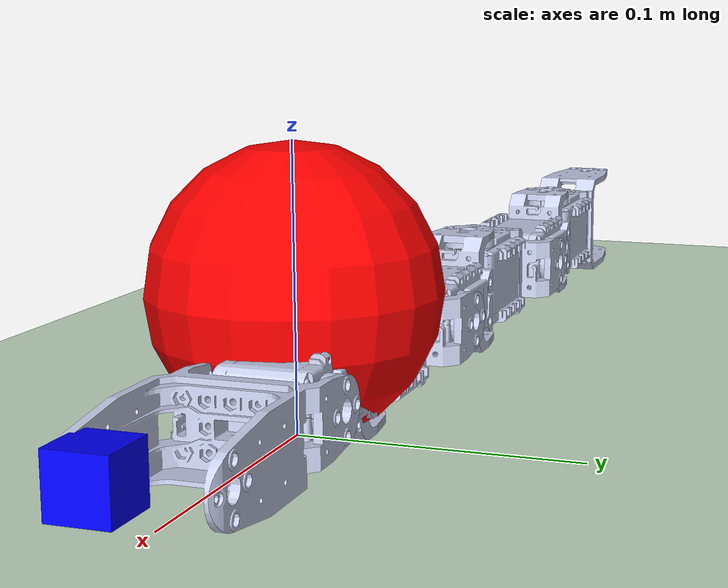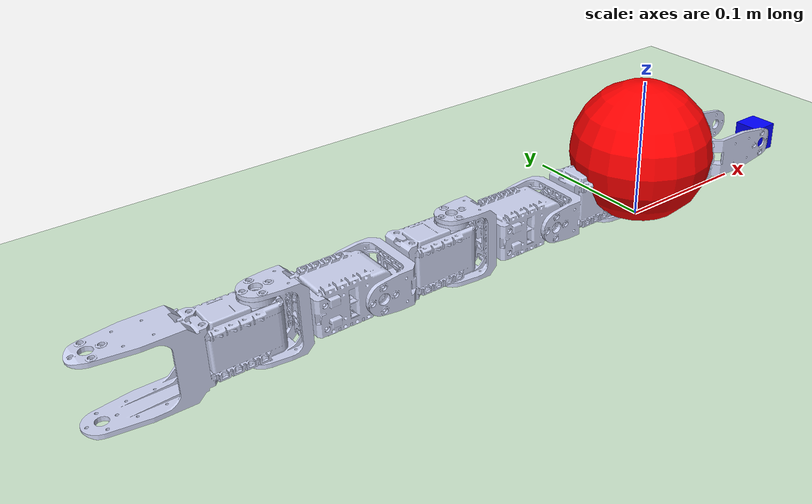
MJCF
<mujoco model="Snake_Env">
    <compiler angle="degree" coordinate="local" inertiafromgeom="true"/>
     <!-- changed timestep from 0.01 to 0.05 (0.0125*4?)   Simulation time step in seconds. 50ms = 0.05s-->
    <option integrator="RK4" timestep="0.0125">
        <flag energy="enable" clampctrl="enable"/>
    </option>
    <size nconmax="1000"/>

    <default>
        <geom conaffinity="0" condim="3" friction="1 0.05 0.00001" margin="0.01" density="800" />
        <!-- The kp in the defult>>position field is defined for actuator>>Position -->
        <position ctrllimited="true" ctrlrange="-1.5 1.5" forcelimited="true" forcerange="-20.0 20.0" kp="20" gear="1"/>
    </default>

    <asset>
        <mesh name="Head" file="Head.STL" />
        <mesh name="Module_0_fromHead" file="Module_0_fromHead.STL" />
        <mesh name="Module_1_fromHead" file="Module_1_fromHead.STL" />
        <mesh name="Module_2_fromHead" file="Module_2_fromHead.STL" />
        <mesh name="Module_3_fromHead" file="Module_3_fromHead.STL" />
        <mesh name="Module_4_fromHead" file="Module_4_fromHead.STL" />
        <mesh name="Module_5_fromHead" file="Module_5_fromHead.STL" />

        <!-- Textures for floor and Target ball-->
        <texture builtin="gradient" height="100" rgb1="1 1 1" rgb2="0 0 0" type="skybox" width="100"/>
        <texture builtin="flat" height="1278" mark="cross" markrgb="1 1 1" name="texgeom" random="0.01"
                 rgb1="0.8 0.6 0.4" rgb2="0.8 0.6 0.4" type="cube" width="127"/>
        <texture builtin="checker" height="100" name="texplane" rgb1="0 0 0" rgb2="0.8 0.8 0.8" type="2d" width="100"/>

        <material name="MatPlane" reflectance="0.5" shininess="1" specular="1" texrepeat="80 80" texture="texplane"/>
        <material name="geom" texture="texgeom" texuniform="true"/>
        <material name="MatTarget" rgba="1 0 0 1" reflectance="0.05" shininess="0.1" specular="0.1"/>
    </asset>

    <visual>
        <map znear="0.0625"  />
        <quality shadowsize="4096"/>
    </visual>

    <worldbody>
        <light cutoff="100" diffuse="1 1 1" dir="-0 0 -1.3" directional="true" exponent="1" pos="0 0 1.3"
               specular=".1 .1 .1"/>
        <geom name="floor" size="80 80 10" material="MatPlane" conaffinity="1" condim="3" pos="0 0 -0.025" rgba="0.8 0.9 0.8 0.71" type="plane"/>

        <body name="target_ball" pos="0 0 0.05">
            <joint axis="1 0 0" name="target_slider_x" type="slide"/>
            <joint axis="0 1 0" name="target_slider_y" type="slide"/>
            <geom name="target_ball_geom" type="sphere" pos="0 0 0" size="0.05" material="MatTarget"/>
            <camera name="track_ball" mode="trackcom" pos="0 0 6" euler="30 0 0"/>
            <camera name="track_ball2" mode="targetbodycom" pos="0 0 1" zaxis="0 0 90" />
        </body>

        <!--  ================= 6-Module-Snake-Mar ================= /-->
        <body name="Snake_Env" pos="0 0 0">

            <!-- Simulate the firctional sliding on the floor -->
            <joint axis="1 0 0" name="slider_x" type="slide" damping="0.01" frictionloss="0.2"/>
            <joint axis="0 1 0" name="slider_y" type="slide" damping="0.01" frictionloss="0.2"/>
            <joint axis="0 0 1" name="slider_z" type="slide" damping="0.01" frictionloss="1"/>

            <joint axis="1 0 0" name="hinge_x" type="hinge"/>
            <joint axis="0 1 0" name="hinge_y" type="hinge"/>
            <joint axis="0 0 1" name="hinge_z"  type="hinge"/>

            <!-- M2-Snake Body -->
            <body name="M2-Head" pos="0 0 0">
                <geom type="mesh" rgba="0.79216 0.81961 0.93333 1" mesh="Head" />
                <!-- Define camera and site [Don't know why we need them]-->
                <camera name="cam_Head" pos="0.13 0 .025" fovy="90" euler="90 -90 0"/>
                <site name="site_Head" pos="0.13 0 .025" type="box"  size=".01 .01 .01" rgba="0 0 1 0.9"/>
                <body name="Module_0_fromHead" pos="0.0465 0 0.024">
                    <inertial pos="-0.17907 0.012862 0.00033889" quat="0.268962 0.65397 0.269933 0.653543" mass="0.34605" diaginertia="0.00569944 0.00569937 7.43933e-05" />
                    <joint name="Joint_0_fromHead" pos="0 0 0" axis="0 1 0" limited="true" range="-100 100" damping="1" frictionloss="20" />
                    <geom type="mesh" rgba="0.79216 0.81961 0.93333 1" mesh="Module_0_fromHead" />
                    <body name="Module_1_fromHead" pos="-0.0675 0.0125 0">
                        <inertial pos="-0.11157 0.00036206 0.00033889" quat="0.268962 0.65397 0.269933 0.653543" mass="0.34605" diaginertia="0.00569944 0.00569937 7.43933e-05" />
                        <joint name="Joint_1_fromHead" pos="0 0 0" axis="0 0 1" limited="true" range="-100 100" damping="1" frictionloss="20" />
                        <geom type="mesh" rgba="0.79216 0.81961 0.93333 1" mesh="Module_1_fromHead" />
                        <body name="Module_2_fromHead" pos="-0.0675 0 0">
                            <inertial pos="-0.044068 0.00036206 0.00033889" quat="0.268962 0.65397 0.269933 0.653543" mass="0.34605" diaginertia="0.00569944 0.00569937 7.43933e-05" />
                            <joint name="Joint_2_fromHead" pos="0 0 0" axis="0 1 0" limited="true" range="-100 100" damping="1" frictionloss="20" />
                            <geom type="mesh" rgba="0.79216 0.81961 0.93333 1" mesh="Module_2_fromHead" />
                            <body name="Module_3_fromHead" pos="-0.0675 0 0">
                                <inertial pos="0.023432 0.00036206 0.00033889" quat="0.268962 0.65397 0.269933 0.653543" mass="0.34605" diaginertia="0.00569944 0.00569937 7.43933e-05" />
                                <joint name="Joint_3_fromHead" pos="0 0 0" axis="0 0 1" limited="true" range="-100 100" damping="1" frictionloss="20" />
                                <geom type="mesh" rgba="0.79216 0.81961 0.93333 1" mesh="Module_3_fromHead" />
                                <body name="Module_4_fromHead" pos="-0.0675 0 0">
                                    <inertial pos="0.090932 0.00036206 0.00033889" quat="0.268962 0.65397 0.269933 0.653543" mass="0.34605" diaginertia="0.00569944 0.00569937 7.43933e-05" />
                                    <joint name="Joint_4_fromHead" pos="0 0 0" axis="0 1 0" limited="true" range="-100 100" damping="1" frictionloss="20" />
                                    <geom type="mesh" rgba="0.79216 0.81961 0.93333 1" mesh="Module_4_fromHead" />
                                    <body name="Module_5_fromHead" pos="-0.0675 0 0">
                                        <inertial pos="0.15843 0.00036206 0.00033889" quat="0.268962 0.65397 0.269933 0.653543" mass="0.34605" diaginertia="0.00569944 0.00569937 7.43933e-05" />
                                        <joint name="Joint_5_fromHead" pos="0 0 0" axis="0 0 1" limited="true" range="-100 100" damping="1" frictionloss="20" />
                                        <geom type="mesh" rgba="0.79216 0.81961 0.93333 1" mesh="Module_5_fromHead" />
                                    </body>
                                </body>
                            </body>
                        </body>
                    </body>
                </body>
            </body>
        </body>
    </worldbody>

    <actuator >
        <position name="Actuator_0_fromHead" joint="Joint_0_fromHead"/>
        <position name="Actuator_1_fromHead" joint="Joint_1_fromHead"/>
        <position name="Actuator_2_fromHead" joint="Joint_2_fromHead"/>
        <position name="Actuator_3_fromHead" joint="Joint_3_fromHead"/>
        <position name="Actuator_4_fromHead" joint="Joint_4_fromHead"/>
        <position name="Actuator_5_fromHead" joint="Joint_5_fromHead"/>
    </actuator>

    <sensor>

        <actuatorfrc name="Sensor_0_fromHead" actuator="Actuator_0_fromHead" />
        <actuatorfrc name="Sensor_1_fromHead" actuator="Actuator_1_fromHead" />
        <actuatorfrc name="Sensor_2_fromHead" actuator="Actuator_2_fromHead" />
        <actuatorfrc name="Sensor_3_fromHead" actuator="Actuator_3_fromHead" />
        <actuatorfrc name="Sensor_4_fromHead" actuator="Actuator_4_fromHead" />
        <actuatorfrc name="Sensor_5_fromHead" actuator="Actuator_5_fromHead" />

        <velocimeter name="sensor_velocimeter" site="site_Head"/>
        <accelerometer name="sensor_accelerometer" site="site_Head"/>

    </sensor>
</mujoco>
